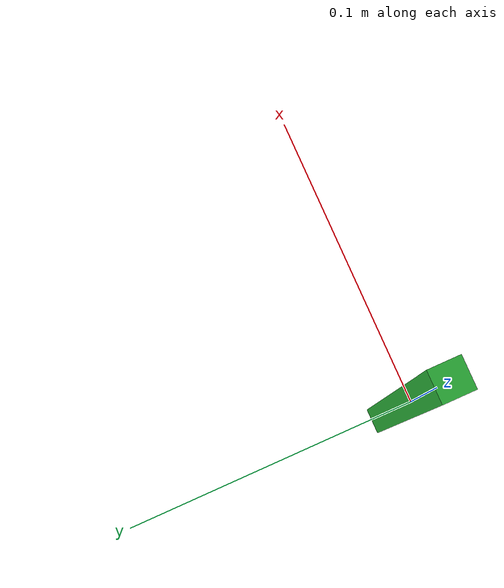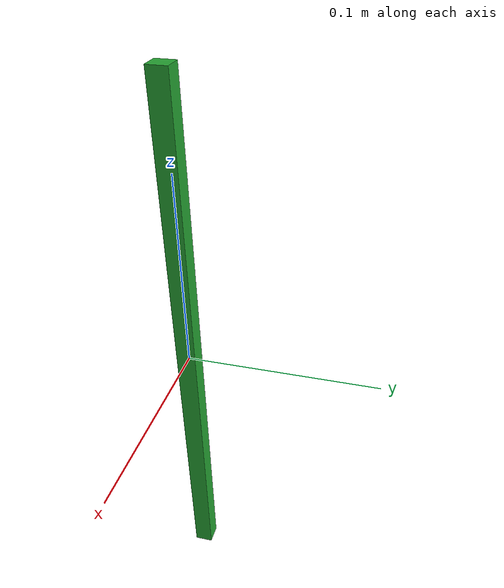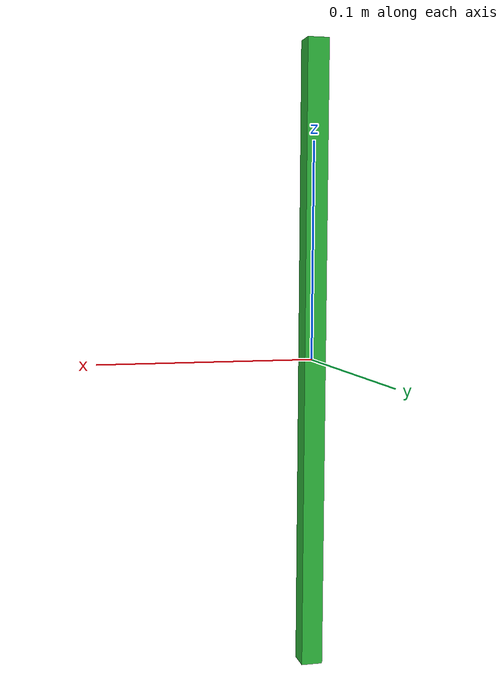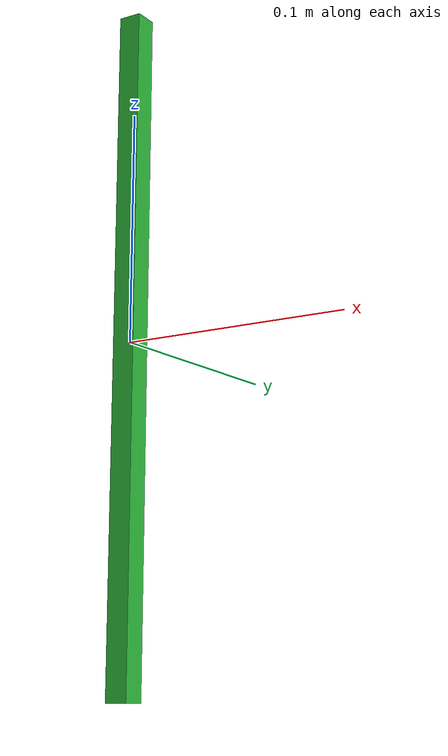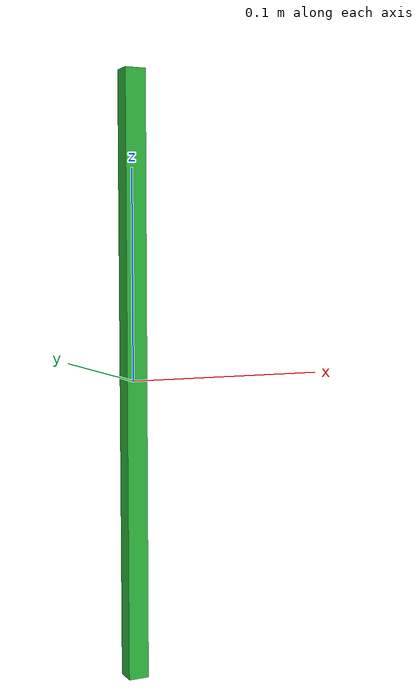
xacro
<?xml version="1.0"?>
<robot name="piquet" xmlns:xacro="http://www.ros.org/wiki/xacro">

	<xacro:include filename="$(find stake_description)/urdf/materials.xacro" />

  <xacro:macro name="box_inertia" params="m x y z">
    <inertia  ixx="${m*(y*y+z*z)/12}" ixy = "0" ixz = "0"
      iyy="${m*(x*x+z*z)/12}" iyz = "0"
      izz="${m*(x*x+z*z)/12}"
    />
  </xacro:macro>

	<link name="stake">
  		<collision>
	  		<origin xyz="0 0 0" rpy="0 0 0" />
	        <geometry>
	          <box size="0.01 0.01 0.29"/>
	        </geometry>
      	</collision>
		<visual>
			<origin xyz="0 0 0" rpy="0 0 0"/>
			<geometry>
		  		 <box size="0.01 0.01 0.29"/>
			</geometry>
		</visual>
		<inertial>
			<origin xyz="0 0 0" rpy="0 0 0"/>
			<mass value="0.05"/>
			<box_inertia m="0.05" x="0.01" y="0.01" z="0.29"/>
		</inertial>
    </link>

	<gazebo reference="stake">
	  <material>Gazebo/Green</material>
	</gazebo>

</robot>

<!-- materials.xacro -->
<robot>

	<material name="black">
	  <color rgba="0.0 0.0 0.0 1.0"/>
	</material>

	<material name="blue">
	  <color rgba="0.0 0.0 0.8 1.0"/>
	</material>

	<material name="green">
	  <color rgba="0.0 0.8 0.0 1.0"/>
	</material>

	<material name="grey">
	  <color rgba="0.2 0.2 0.2 1.0"/>
	</material>

	<material name="orange">
	  <color rgba="${255/255} ${108/255} ${10/255} 1.0"/>
	</material>

	<material name="brown">
	  <color rgba="${222/255} ${207/255} ${195/255} 1.0"/>
	</material>

	<material name="red">
	  <color rgba="0.8 0.0 0.0 1.0"/>
	</material>

	<material name="white">
	  <color rgba="1.0 1.0 1.0 1.0"/>
  	</material>
</robot>
